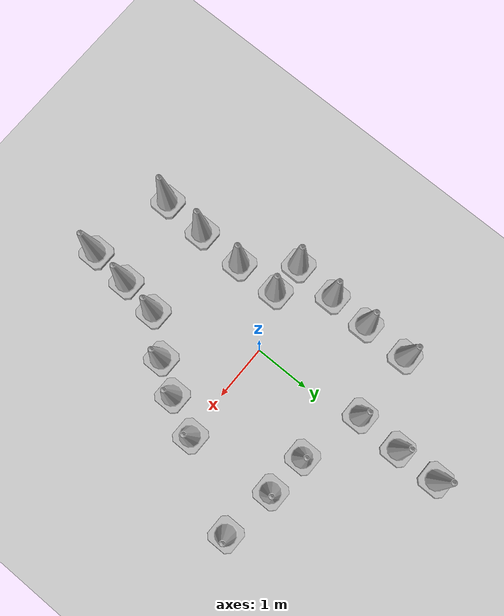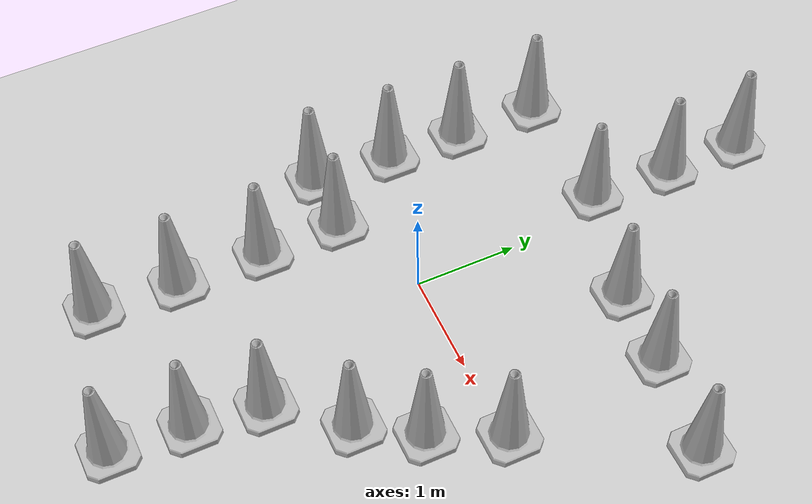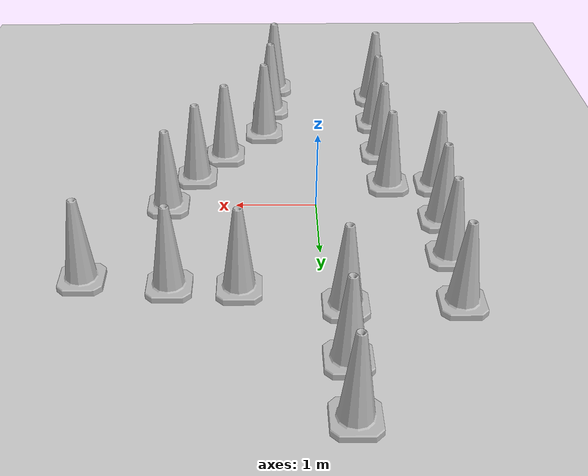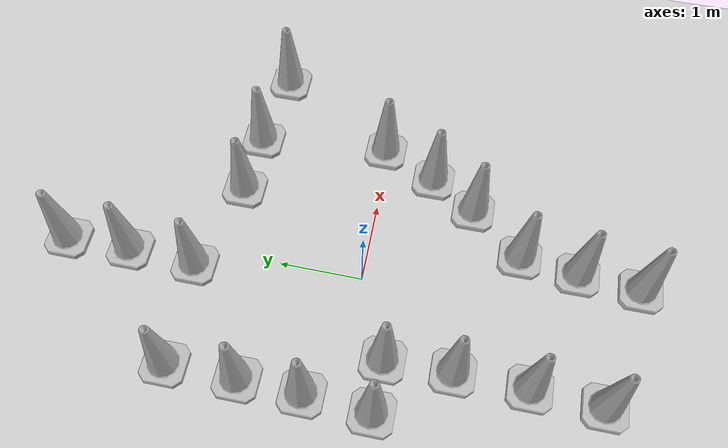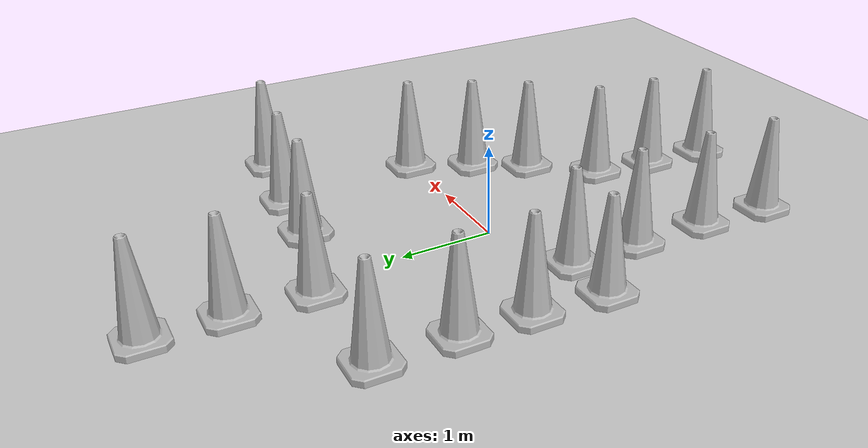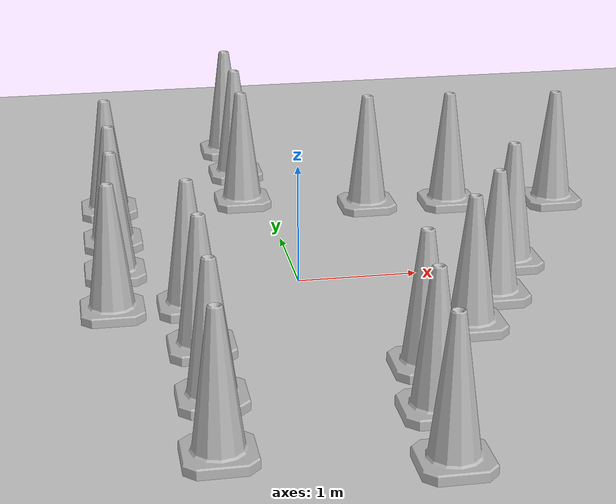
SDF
<sdf version="1.7">
 <world name="default">
  <light name="sun" type="directional">
   <pose>0 0 10 0 -0 0</pose>
   <diffuse>0.8 0.8 0.8 1</diffuse>
   <specular>0.2 0.2 0.2 1</specular>
   <attenuation>
    <range>1000</range>
    <constant>0.9</constant>
    <linear>0.01</linear>
    <quadratic>0.001</quadratic>
   </attenuation>
   <direction>-0.5 0.1 -0.9</direction>
   <spot><inner_angle>0</inner_angle><outer_angle>0</outer_angle><falloff>0</falloff></spot>
  </light>
  <model name="ground_plane">
   <static>1</static>
   <link name="link">
    <collision name="collision">
     <geometry><plane><normal>0 0 1</normal><size>100 100</size></plane></geometry>
     <surface>
      <contact><collide_bitmask>65535</collide_bitmask></contact>
      <friction><ode><mu>100</mu><mu2>50</mu2></ode></friction>
     </surface>
    </collision>
    <visual name="visual">
     <cast_shadows>0</cast_shadows>
     <geometry><plane><normal>0 0 1</normal><size>100 100</size></plane></geometry>
     <material>
      <script><uri>file://media/materials/scripts/gazebo.material</uri><name>Gazebo/Grey</name></script>
     </material>
    </visual>
   </link>
  </model>
  <gravity>0 0 -9.8</gravity>
  <magnetic_field>6e-06 2.3e-05 -4.2e-05</magnetic_field>
  <atmosphere type="adiabatic"/>
  <physics type="ode">
   <max_step_size>0.001</max_step_size>
   <real_time_factor>1</real_time_factor>
   <real_time_update_rate>1000</real_time_update_rate>
  </physics>
  <scene><ambient>0.4 0.4 0.4 1</ambient><background>0.7 0.7 0.7 1</background><shadows>1</shadows></scene>
  <spherical_coordinates>
   <surface_model>EARTH_WGS84</surface_model>
   <latitude_deg>0</latitude_deg>
   <longitude_deg>0</longitude_deg>
   <elevation>0</elevation>
   <heading_deg>0</heading_deg>
  </spherical_coordinates>
  <model name="Construction Cone">
   <link name="link">
    <collision name="collision">
     <geometry>
      <mesh><scale>10 10 10</scale><uri>model://construction_cone/meshes/construction_cone.dae</uri></mesh>
     </geometry>
    </collision>
    <visual name="visual">
     <geometry>
      <mesh><scale>10 10 10</scale><uri>model://construction_cone/meshes/construction_cone.dae</uri></mesh>
     </geometry>
    </visual>
    <inertial>
     <inertia><ixx>1</ixx><ixy>0</ixy><ixz>0</ixz><iyy>1</iyy><iyz>0</iyz><izz>1</izz></inertia>
     <mass>1</mass>
    </inertial>
   </link>
   <pose>0.643328 -1.80434 -0 -0 -0 -0</pose>
  </model>
  <model name="Construction Cone_clone">
   <link name="link">
    <collision name="collision">
     <geometry>
      <mesh><scale>10 10 10</scale><uri>model://construction_cone/meshes/construction_cone.dae</uri></mesh>
     </geometry>
    </collision>
    <visual name="visual">
     <geometry>
      <mesh><scale>10 10 10</scale><uri>model://construction_cone/meshes/construction_cone.dae</uri></mesh>
     </geometry>
    </visual>
    <inertial>
     <inertia><ixx>1</ixx><ixy>0</ixy><ixz>0</ixz><iyy>1</iyy><iyz>0</iyz><izz>1</izz></inertia>
     <mass>1</mass>
    </inertial>
   </link>
   <pose>-1.55614 -0.414463 -4e-06 4e-06 -1e-06 0</pose>
  </model>
  <model name="Construction Cone_clone_0">
   <link name="link">
    <collision name="collision">
     <geometry>
      <mesh><scale>10 10 10</scale><uri>model://construction_cone/meshes/construction_cone.dae</uri></mesh>
     </geometry>
    </collision>
    <visual name="visual">
     <geometry>
      <mesh><scale>10 10 10</scale><uri>model://construction_cone/meshes/construction_cone.dae</uri></mesh>
     </geometry>
    </visual>
    <inertial>
     <inertia><ixx>1</ixx><ixy>0</ixy><ixz>0</ixz><iyy>1</iyy><iyz>0</iyz><izz>1</izz></inertia>
     <mass>1</mass>
    </inertial>
   </link>
   <pose>1.16797 -1.17509 0 -0 -0 -0</pose>
  </model>
  <model name="Construction Cone_clone_1">
   <link name="link">
    <collision name="collision">
     <geometry>
      <mesh><scale>10 10 10</scale><uri>model://construction_cone/meshes/construction_cone.dae</uri></mesh>
     </geometry>
    </collision>
    <visual name="visual">
     <geometry>
      <mesh><scale>10 10 10</scale><uri>model://construction_cone/meshes/construction_cone.dae</uri></mesh>
     </geometry>
    </visual>
    <inertial>
     <inertia><ixx>1</ixx><ixy>0</ixy><ixz>0</ixz><iyy>1</iyy><iyz>0</iyz><izz>1</izz></inertia>
     <mass>1</mass>
    </inertial>
   </link>
   <pose>-1.49762 0.379518 -0 0 -0 0</pose>
  </model>
  <model name="Construction Cone_clone_2">
   <link name="link">
    <collision name="collision">
     <geometry>
      <mesh><scale>10 10 10</scale><uri>model://construction_cone/meshes/construction_cone.dae</uri></mesh>
     </geometry>
    </collision>
    <visual name="visual">
     <geometry>
      <mesh><scale>10 10 10</scale><uri>model://construction_cone/meshes/construction_cone.dae</uri></mesh>
     </geometry>
    </visual>
    <inertial>
     <inertia><ixx>1</ixx><ixy>0</ixy><ixz>0</ixz><iyy>1</iyy><iyz>0</iyz><izz>1</izz></inertia>
     <mass>1</mass>
    </inertial>
   </link>
   <pose>-1.4785 1.12226 -0 0 -0 0</pose>
  </model>
  <model name="Construction Cone_clone_3">
   <link name="link">
    <collision name="collision">
     <geometry>
      <mesh><scale>10 10 10</scale><uri>model://construction_cone/meshes/construction_cone.dae</uri></mesh>
     </geometry>
    </collision>
    <visual name="visual">
     <geometry>
      <mesh><scale>10 10 10</scale><uri>model://construction_cone/meshes/construction_cone.dae</uri></mesh>
     </geometry>
    </visual>
    <inertial>
     <inertia><ixx>1</ixx><ixy>0</ixy><ixz>0</ixz><iyy>1</iyy><iyz>0</iyz><izz>1</izz></inertia>
     <mass>1</mass>
    </inertial>
   </link>
   <pose>-1.47331 1.96109 -9e-06 -1e-06 -0 -0</pose>
  </model>
  <model name="Construction Cone_clone_4">
   <link name="link">
    <collision name="collision">
     <geometry>
      <mesh><scale>10 10 10</scale><uri>model://construction_cone/meshes/construction_cone.dae</uri></mesh>
     </geometry>
    </collision>
    <visual name="visual">
     <geometry>
      <mesh><scale>10 10 10</scale><uri>model://construction_cone/meshes/construction_cone.dae</uri></mesh>
     </geometry>
    </visual>
    <inertial>
     <inertia><ixx>1</ixx><ixy>0</ixy><ixz>0</ixz><iyy>1</iyy><iyz>0</iyz><izz>1</izz></inertia>
     <mass>1</mass>
    </inertial>
   </link>
   <pose>1.83862 0.044131 -0 0 -0 0</pose>
  </model>
  <model name="Construction Cone_clone_5">
   <link name="link">
    <collision name="collision">
     <geometry>
      <mesh><scale>10 10 10</scale><uri>model://construction_cone/meshes/construction_cone.dae</uri></mesh>
     </geometry>
    </collision>
    <visual name="visual">
     <geometry>
      <mesh><scale>10 10 10</scale><uri>model://construction_cone/meshes/construction_cone.dae</uri></mesh>
     </geometry>
    </visual>
    <inertial>
     <inertia><ixx>1</ixx><ixy>0</ixy><ixz>0</ixz><iyy>1</iyy><iyz>0</iyz><izz>1</izz></inertia>
     <mass>1</mass>
    </inertial>
   </link>
   <pose>-0.945941 -0.423219 -0 0 -0 0</pose>
  </model>
  <model name="Construction Cone_clone_6">
   <link name="link">
    <collision name="collision">
     <geometry>
      <mesh><scale>10 10 10</scale><uri>model://construction_cone/meshes/construction_cone.dae</uri></mesh>
     </geometry>
    </collision>
    <visual name="visual">
     <geometry>
      <mesh><scale>10 10 10</scale><uri>model://construction_cone/meshes/construction_cone.dae</uri></mesh>
     </geometry>
    </visual>
    <inertial>
     <inertia><ixx>1</ixx><ixy>0</ixy><ixz>0</ixz><iyy>1</iyy><iyz>0</iyz><izz>1</izz></inertia>
     <mass>1</mass>
    </inertial>
   </link>
   <pose>-0.931541 -1.21344 -0 0 -0 0</pose>
  </model>
  <model name="Construction Cone_clone_7">
   <link name="link">
    <collision name="collision">
     <geometry>
      <mesh><scale>10 10 10</scale><uri>model://construction_cone/meshes/construction_cone.dae</uri></mesh>
     </geometry>
    </collision>
    <visual name="visual">
     <geometry>
      <mesh><scale>10 10 10</scale><uri>model://construction_cone/meshes/construction_cone.dae</uri></mesh>
     </geometry>
    </visual>
    <inertial>
     <inertia><ixx>1</ixx><ixy>0</ixy><ixz>0</ixz><iyy>1</iyy><iyz>0</iyz><izz>1</izz></inertia>
     <mass>1</mass>
    </inertial>
   </link>
   <pose>0.54958 -2.5 -0 0 -1e-06 0</pose>
  </model>
  <model name="Construction Cone_clone_8">
   <link name="link">
    <collision name="collision">
     <geometry>
      <mesh><scale>10 10 10</scale><uri>model://construction_cone/meshes/construction_cone.dae</uri></mesh>
     </geometry>
    </collision>
    <visual name="visual">
     <geometry>
      <mesh><scale>10 10 10</scale><uri>model://construction_cone/meshes/construction_cone.dae</uri></mesh>
     </geometry>
    </visual>
    <inertial>
     <inertia><ixx>1</ixx><ixy>0</ixy><ixz>0</ixz><iyy>1</iyy><iyz>0</iyz><izz>1</izz></inertia>
     <mass>1</mass>
    </inertial>
   </link>
   <pose>-0.945923 -2.06749 -4e-06 4e-06 -1e-06 0</pose>
  </model>
  <model name="Construction Cone_clone_9">
   <link name="link">
    <collision name="collision">
     <geometry>
      <mesh><scale>10 10 10</scale><uri>model://construction_cone/meshes/construction_cone.dae</uri></mesh>
     </geometry>
    </collision>
    <visual name="visual">
     <geometry>
      <mesh><scale>10 10 10</scale><uri>model://construction_cone/meshes/construction_cone.dae</uri></mesh>
     </geometry>
    </visual>
    <inertial>
     <inertia><ixx>1</ixx><ixy>0</ixy><ixz>0</ixz><iyy>1</iyy><iyz>0</iyz><izz>1</izz></inertia>
     <mass>1</mass>
    </inertial>
   </link>
   <pose>-0.991942 -2.8892 -0 -0 -0 -0</pose>
  </model>
  <model name="Construction Cone_clone_10">
   <link name="link">
    <collision name="collision">
     <geometry>
      <mesh><scale>10 10 10</scale><uri>model://construction_cone/meshes/construction_cone.dae</uri></mesh>
     </geometry>
    </collision>
    <visual name="visual">
     <geometry>
      <mesh><scale>10 10 10</scale><uri>model://construction_cone/meshes/construction_cone.dae</uri></mesh>
     </geometry>
    </visual>
    <inertial>
     <inertia><ixx>1</ixx><ixy>0</ixy><ixz>0</ixz><iyy>1</iyy><iyz>0</iyz><izz>1</izz></inertia>
     <mass>1</mass>
    </inertial>
   </link>
   <pose>0.487982 -3.23957 -0 0 -1e-06 0</pose>
  </model>
  <model name="Construction Cone_clone_11">
   <link name="link">
    <collision name="collision">
     <geometry>
      <mesh><scale>10 10 10</scale><uri>model://construction_cone/meshes/construction_cone.dae</uri></mesh>
     </geometry>
    </collision>
    <visual name="visual">
     <geometry>
      <mesh><scale>10 10 10</scale><uri>model://construction_cone/meshes/construction_cone.dae</uri></mesh>
     </geometry>
    </visual>
    <inertial>
     <inertia><ixx>1</ixx><ixy>0</ixy><ixz>0</ixz><iyy>1</iyy><iyz>0</iyz><izz>1</izz></inertia>
     <mass>1</mass>
    </inertial>
   </link>
   <pose>-0.21737 1.99561 -0 0 -0 0</pose>
  </model>
  <model name="Construction Cone_clone_12">
   <link name="link">
    <collision name="collision">
     <geometry>
      <mesh><scale>10 10 10</scale><uri>model://construction_cone/meshes/construction_cone.dae</uri></mesh>
     </geometry>
    </collision>
    <visual name="visual">
     <geometry>
      <mesh><scale>10 10 10</scale><uri>model://construction_cone/meshes/construction_cone.dae</uri></mesh>
     </geometry>
    </visual>
    <inertial>
     <inertia><ixx>1</ixx><ixy>0</ixy><ixz>0</ixz><iyy>1</iyy><iyz>0</iyz><izz>1</izz></inertia>
     <mass>1</mass>
    </inertial>
   </link>
   <pose>-0.179951 2.81988 -0 0 -0 0</pose>
  </model>
  <model name="Construction Cone_clone_13">
   <link name="link">
    <collision name="collision">
     <geometry>
      <mesh><scale>10 10 10</scale><uri>model://construction_cone/meshes/construction_cone.dae</uri></mesh>
     </geometry>
    </collision>
    <visual name="visual">
     <geometry>
      <mesh><scale>10 10 10</scale><uri>model://construction_cone/meshes/construction_cone.dae</uri></mesh>
     </geometry>
    </visual>
    <inertial>
     <inertia><ixx>1</ixx><ixy>0</ixy><ixz>0</ixz><iyy>1</iyy><iyz>0</iyz><izz>1</izz></inertia>
     <mass>1</mass>
    </inertial>
   </link>
   <pose>-0.184834 3.60409 -0 0 -0 0</pose>
  </model>
  <model name="Construction Cone_clone_14">
   <link name="link">
    <collision name="collision">
     <geometry>
      <mesh><scale>10 10 10</scale><uri>model://construction_cone/meshes/construction_cone.dae</uri></mesh>
     </geometry>
    </collision>
    <visual name="visual">
     <geometry>
      <mesh><scale>10 10 10</scale><uri>model://construction_cone/meshes/construction_cone.dae</uri></mesh>
     </geometry>
    </visual>
    <inertial>
     <inertia><ixx>1</ixx><ixy>0</ixy><ixz>0</ixz><iyy>1</iyy><iyz>0</iyz><izz>1</izz></inertia>
     <mass>1</mass>
    </inertial>
   </link>
   <pose>1.51825 -0.624789 -0 0 -0 0</pose>
  </model>
  <model name="Construction Cone_clone_15">
   <link name="link">
    <collision name="collision">
     <geometry>
      <mesh><scale>10 10 10</scale><uri>model://construction_cone/meshes/construction_cone.dae</uri></mesh>
     </geometry>
    </collision>
    <visual name="visual">
     <geometry>
      <mesh><scale>10 10 10</scale><uri>model://construction_cone/meshes/construction_cone.dae</uri></mesh>
     </geometry>
    </visual>
    <inertial>
     <inertia><ixx>1</ixx><ixy>0</ixy><ixz>0</ixz><iyy>1</iyy><iyz>0</iyz><izz>1</izz></inertia>
     <mass>1</mass>
    </inertial>
   </link>
   <pose>0.925569 1.68933 -0 0 -1e-06 0</pose>
  </model>
  <model name="Construction Cone_clone_16">
   <link name="link">
    <collision name="collision">
     <geometry>
      <mesh><scale>10 10 10</scale><uri>model://construction_cone/meshes/construction_cone.dae</uri></mesh>
     </geometry>
    </collision>
    <visual name="visual">
     <geometry>
      <mesh><scale>10 10 10</scale><uri>model://construction_cone/meshes/construction_cone.dae</uri></mesh>
     </geometry>
    </visual>
    <inertial>
     <inertia><ixx>1</ixx><ixy>0</ixy><ixz>0</ixz><iyy>1</iyy><iyz>0</iyz><izz>1</izz></inertia>
     <mass>1</mass>
    </inertial>
   </link>
   <pose>1.6965 1.64545 -0 0 -0 0</pose>
  </model>
  <model name="Construction Cone_clone_17">
   <link name="link">
    <collision name="collision">
     <geometry>
      <mesh><scale>10 10 10</scale><uri>model://construction_cone/meshes/construction_cone.dae</uri></mesh>
     </geometry>
    </collision>
    <visual name="visual">
     <geometry>
      <mesh><scale>10 10 10</scale><uri>model://construction_cone/meshes/construction_cone.dae</uri></mesh>
     </geometry>
    </visual>
    <inertial>
     <inertia><ixx>1</ixx><ixy>0</ixy><ixz>0</ixz><iyy>1</iyy><iyz>0</iyz><izz>1</izz></inertia>
     <mass>1</mass>
    </inertial>
   </link>
   <pose>2.67814 1.51723 -0 0 -1e-06 0</pose>
  </model>
 </world>
</sdf>
